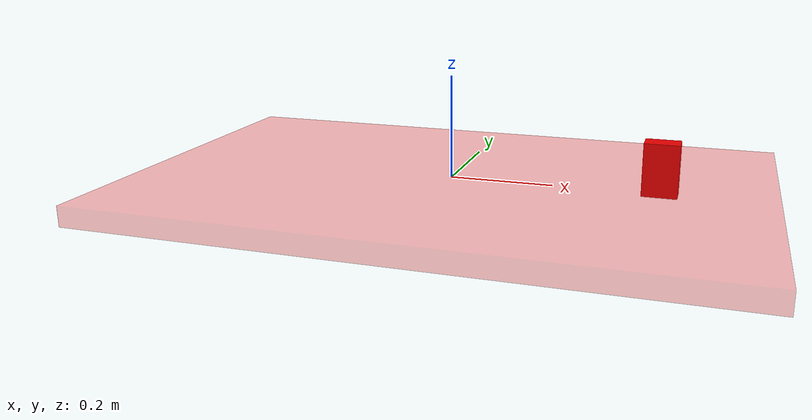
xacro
<?xml version="1.0"?>
<robot name="cracker_box" xmlns:xacro="http://www.ros.org/wiki/xacro">

<!-- table -->
<xacro:property name="tl" value="1.225" />
<xacro:property name="tw" value="0.77" />
<xacro:property name="th" value="0.04" />

<!-- box -->
<xacro:property name="bl" value="0.1" />
<xacro:property name="bw" value="0.065" />
<xacro:property name="bh" value="0.04" />

<!-- box center from base link -->
<xacro:property name="bx" value="0.4" />
<xacro:property name="by" value="0.0" />

<link name="base_link"/>

<link name="table_link" >
  <visual>
    <origin xyz="0 0 0" rpy="0 0 0" />
    <geometry>
      <box size="${tl} ${tw} ${th}" />
    </geometry>
    <material name="Red1">
      <color rgba="1 0 0 0.3"/>
    </material>
  </visual>
</link>

<joint name="base_joint" type="fixed">
 <parent link="base_link" />
 <child link="table_link" />
 <origin xyz="0 0 ${-th/2.0}" rpy="0 0 0" />
</joint>

<link name="box_link" >
  <visual>
    <origin xyz="0 0 0" rpy="0 0 0" />
    <geometry>
      <box size="${bl} ${bw} ${bh}" />
    </geometry>
    <material name="Red2">
      <color rgba="1 0 0 1"/>
    </material>
  </visual>
</link>

<joint name="box_joint" type="fixed">
 <parent link="table_link" />
 <child link="box_link" />
 <origin xyz="${bx} ${by} ${th/2.0 + bl/2.0}" rpy="0 1.57 1.57" />
</joint>

</robot>
